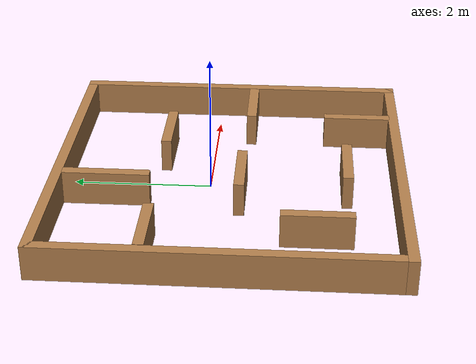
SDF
<?xml version='1.0'?>
<sdf version='1.7'>
  <model name='map_2'>
    <pose>0. 0.1 0 0 -0 0</pose>
    <link name='Wall_0'>
      <collision name='Wall_0_Collision'>
        <geometry>
          <box>
            <size>5 0.15 0.5</size>
          </box>
        </geometry>
        <pose>0 0 0.25 0 -0 0</pose>
      </collision>
      <visual name='Wall_0_Visual'>
        <pose>0 0 0.25 0 -0 0</pose>
        <geometry>
          <box>
            <size>5 0.15 0.5</size>
          </box>
        </geometry>
        <material>
          <script>
            <uri>file://media/materials/scripts/gazebo.material</uri>
            <name>Gazebo/Wood</name>
          </script>
          <ambient>1 1 1 1</ambient>
        </material>
        <meta>
          <layer>0</layer>
        </meta>
      </visual>
      <pose>-0 2.0375 0 0 -0 0</pose>
    </link>
    <link name='Wall_12'>
      <collision name='Wall_12_Collision'>
        <geometry>
          <box>
            <size>1.25 0.15 0.5</size>
          </box>
        </geometry>
        <pose>0 0 0.25 0 -0 0</pose>
      </collision>
      <visual name='Wall_12_Visual'>
        <pose>0 0 0.25 0 -0 0</pose>
        <geometry>
          <box>
            <size>1.25 0.15 0.5</size>
          </box>
        </geometry>
        <material>
          <script>
            <uri>file://media/materials/scripts/gazebo.material</uri>
            <name>Gazebo/Wood</name>
          </script>
          <ambient>1 1 1 1</ambient>
        </material>
        <meta>
          <layer>0</layer>
        </meta>
      </visual>
      <pose>-0.52 1.3455 0 0 -0 -1.5708</pose>
    </link>
    <link name='Wall_14'>
      <collision name='Wall_14_Collision'>
        <geometry>
          <box>
            <size>1 0.15 0.5</size>
          </box>
        </geometry>
        <pose>0 0 0.25 0 -0 0</pose>
      </collision>
      <visual name='Wall_14_Visual'>
        <pose>0 0 0.25 0 -0 0</pose>
        <geometry>
          <box>
            <size>1 0.15 0.5</size>
          </box>
        </geometry>
        <material>
          <script>
            <uri>file://media/materials/scripts/gazebo.material</uri>
            <name>Gazebo/Wood</name>
          </script>
          <ambient>1 1 1 1</ambient>
        </material>
        <meta>
          <layer>0</layer>
        </meta>
      </visual>
      <pose>-1.841 0.6265 0 0 -0 0</pose>
    </link>
    <link name='Wall_16'>
      <collision name='Wall_16_Collision'>
        <geometry>
          <box>
            <size>1 0.15 0.5</size>
          </box>
        </geometry>
        <pose>0 0 0.25 0 -0 0</pose>
      </collision>
      <visual name='Wall_16_Visual'>
        <pose>0 0 0.25 0 -0 0</pose>
        <geometry>
          <box>
            <size>1 0.15 0.5</size>
          </box>
        </geometry>
        <material>
          <script>
            <uri>file://media/materials/scripts/gazebo.material</uri>
            <name>Gazebo/Wood</name>
          </script>
          <ambient>1 1 1 1</ambient>
        </material>
        <meta>
          <layer>0</layer>
        </meta>
      </visual>
      <pose>0.937 0.5995 0 0 -0 0</pose>
    </link>
    <link name='Wall_18'>
      <collision name='Wall_18_Collision'>
        <geometry>
          <box>
            <size>1 0.15 0.5</size>
          </box>
        </geometry>
        <pose>0 0 0.25 0 -0 0</pose>
      </collision>
      <visual name='Wall_18_Visual'>
        <pose>0 0 0.25 0 -0 0</pose>
        <geometry>
          <box>
            <size>1 0.15 0.5</size>
          </box>
        </geometry>
        <material>
          <script>
            <uri>file://media/materials/scripts/gazebo.material</uri>
            <name>Gazebo/Wood</name>
          </script>
          <ambient>1 1 1 1</ambient>
        </material>
        <meta>
          <layer>0</layer>
        </meta>
      </visual>
      <pose>-1.459 -1.6375 0 0 -0 -1.5708</pose>
    </link>
    <link name='Wall_20'>
      <collision name='Wall_20_Collision'>
        <geometry>
          <box>
            <size>1 0.15 0.5</size>
          </box>
        </geometry>
        <pose>0 0 0.25 0 -0 0</pose>
      </collision>
      <visual name='Wall_20_Visual'>
        <pose>0 0 0.25 0 -0 0</pose>
        <geometry>
          <box>
            <size>1 0.15 0.5</size>
          </box>
        </geometry>
        <material>
          <script>
            <uri>file://media/materials/scripts/gazebo.material</uri>
            <name>Gazebo/Wood</name>
          </script>
          <ambient>1 1 1 1</ambient>
        </material>
        <meta>
          <layer>0</layer>
        </meta>
      </visual>
      <pose>0.011 -2.0715 0 0 -0 0</pose>
    </link>
    <link name='Wall_22'>
      <collision name='Wall_22_Collision'>
        <geometry>
          <box>
            <size>1 0.15 0.5</size>
          </box>
        </geometry>
        <pose>0 0 0.25 0 -0 0</pose>
      </collision>
      <visual name='Wall_22_Visual'>
        <pose>0 0 0.25 0 -0 0</pose>
        <geometry>
          <box>
            <size>1 0.15 0.5</size>
          </box>
        </geometry>
        <material>
          <script>
            <uri>file://media/materials/scripts/gazebo.material</uri>
            <name>Gazebo/Wood</name>
          </script>
          <ambient>1 1 1 1</ambient>
        </material>
        <meta>
          <layer>0</layer>
        </meta>
      </visual>
      <pose>-0.28 -0.5505 0 0 -0 0</pose>
    </link>
    <link name='Wall_24'>
      <collision name='Wall_24_Collision'>
        <geometry>
          <box>
            <size>1 0.15 0.5</size>
          </box>
        </geometry>
        <pose>0 0 0.25 0 -0 0</pose>
      </collision>
      <visual name='Wall_24_Visual'>
        <pose>0 0 0.25 0 -0 0</pose>
        <geometry>
          <box>
            <size>1 0.15 0.5</size>
          </box>
        </geometry>
        <material>
          <script>
            <uri>file://media/materials/scripts/gazebo.material</uri>
            <name>Gazebo/Wood</name>
          </script>
          <ambient>1 1 1 1</ambient>
        </material>
        <meta>
          <layer>0</layer>
        </meta>
      </visual>
      <pose>1.429 -2.2555 0 0 -0 -1.5708</pose>
    </link>
    <link name='Wall_26'>
      <collision name='Wall_26_Collision'>
        <geometry>
          <box>
            <size>1 0.15 0.5</size>
          </box>
        </geometry>
        <pose>0 0 0.25 0 -0 0</pose>
      </collision>
      <visual name='Wall_26_Visual'>
        <pose>0 0 0.25 0 -0 0</pose>
        <geometry>
          <box>
            <size>1 0.15 0.5</size>
          </box>
        </geometry>
        <material>
          <script>
            <uri>file://media/materials/scripts/gazebo.material</uri>
            <name>Gazebo/Wood</name>
          </script>
          <ambient>1 1 1 1</ambient>
        </material>
        <meta>
          <layer>0</layer>
        </meta>
      </visual>
      <pose>1.8535 -0.628 0 0 -0 0</pose>
    </link>
    <link name='Wall_7'>
      <collision name='Wall_7_Collision'>
        <geometry>
          <box>
            <size>5 0.15 0.5</size>
          </box>
        </geometry>
        <pose>0 0 0.25 0 -0 0</pose>
      </collision>
      <visual name='Wall_7_Visual'>
        <pose>0 0 0.25 0 -0 0</pose>
        <geometry>
          <box>
            <size>5 0.15 0.5</size>
          </box>
        </geometry>
        <material>
          <script>
            <uri>file://media/materials/scripts/gazebo.material</uri>
            <name>Gazebo/Wood</name>
          </script>
          <ambient>1 1 1 1</ambient>
        </material>
        <meta>
          <layer>0</layer>
        </meta>
      </visual>
      <pose>2.425 -0.3875 0 0 -0 -1.5708</pose>
    </link>
    <link name='Wall_8'>
      <collision name='Wall_8_Collision'>
        <geometry>
          <box>
            <size>5 0.15 0.5</size>
          </box>
        </geometry>
        <pose>0 0 0.25 0 -0 0</pose>
      </collision>
      <visual name='Wall_8_Visual'>
        <pose>0 0 0.25 0 -0 0</pose>
        <geometry>
          <box>
            <size>5 0.15 0.5</size>
          </box>
        </geometry>
        <material>
          <script>
            <uri>file://media/materials/scripts/gazebo.material</uri>
            <name>Gazebo/Wood</name>
          </script>
          <ambient>1 1 1 1</ambient>
        </material>
        <meta>
          <layer>0</layer>
        </meta>
      </visual>
      <pose>-0 -2.8125 0 0 -0 3.14159</pose>
    </link>
    <link name='Wall_9'>
      <collision name='Wall_9_Collision'>
        <geometry>
          <box>
            <size>5 0.15 0.5</size>
          </box>
        </geometry>
        <pose>0 0 0.25 0 -0 0</pose>
      </collision>
      <visual name='Wall_9_Visual'>
        <pose>0 0 0.25 0 -0 0</pose>
        <geometry>
          <box>
            <size>5 0.15 0.5</size>
          </box>
        </geometry>
        <material>
          <script>
            <uri>file://media/materials/scripts/gazebo.material</uri>
            <name>Gazebo/Wood</name>
          </script>
          <ambient>1 1 1 1</ambient>
        </material>
        <meta>
          <layer>0</layer>
        </meta>
      </visual>
      <pose>-2.425 -0.3875 0 0 -0 1.5708</pose>
    </link>
    <static>1</static>
  </model>
</sdf>
